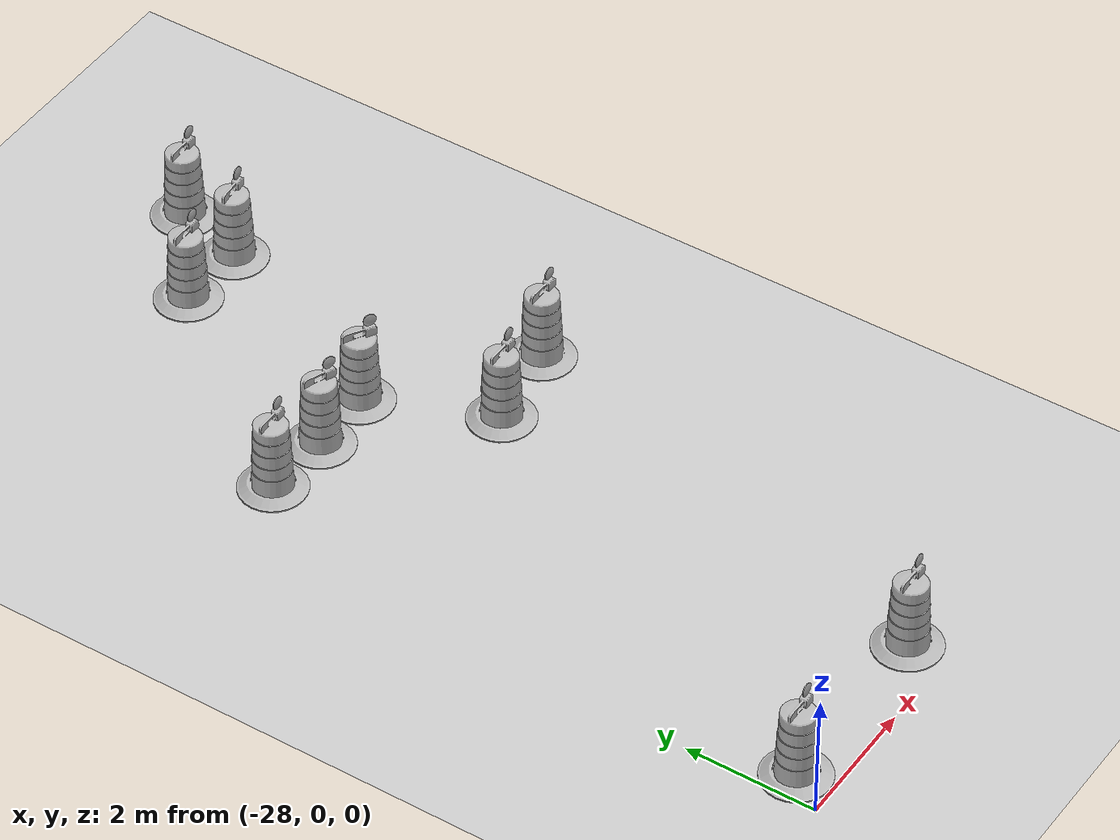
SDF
<sdf version="1.6">
 <world name="default">
  <model name="ground_plane">
   <static>1</static>
   <link name="link">
    <collision name="collision">
     <geometry><plane><normal>0 0 1</normal><size>100 100</size></plane></geometry>
     <surface>
      <contact><collide_bitmask>65535</collide_bitmask></contact>
      <friction><ode><mu>100</mu><mu2>50</mu2></ode></friction>
     </surface>
    </collision>
    <visual name="visual">
     <cast_shadows>0</cast_shadows>
     <geometry><plane><normal>0 0 1</normal><size>100 100</size></plane></geometry>
     <material>
      <script><uri>file://media/materials/scripts/gazebo.material</uri><name>Gazebo/Grey</name></script>
     </material>
    </visual>
   </link>
  </model>
  <model name="Construction Barrel_clone_0">
   <link name="link">
    <inertial>
     <pose>0 0 0.4 0 -0 0</pose>
     <mass>500</mass>
     <inertia><ixx>51.2096</ixx><iyy>51.2096</iyy><izz>25</izz><ixy>0</ixy><ixz>0</ixz><iyz>0</iyz></inertia>
    </inertial>
    <collision name="collision">
     <geometry><mesh><uri>model://construction_barrel/meshes/construction_barrel.dae</uri></mesh></geometry>
    </collision>
    <visual name="visual">
     <geometry><mesh><uri>model://construction_barrel/meshes/construction_barrel.dae</uri></mesh></geometry>
    </visual>
   </link>
   <pose>-26.9549 9.36861 0.024999 3e-06 1e-06 -0.008237</pose>
  </model>
  <model name="Construction Barrel_clone_2">
   <link name="link">
    <inertial>
     <pose>0 0 0.4 0 -0 0</pose>
     <mass>500</mass>
     <inertia><ixx>51.2096</ixx><iyy>51.2096</iyy><izz>25</izz><ixy>0</ixy><ixz>0</ixz><iyz>0</iyz></inertia>
    </inertial>
    <collision name="collision">
     <geometry><mesh><uri>model://construction_barrel/meshes/construction_barrel.dae</uri></mesh></geometry>
    </collision>
    <visual name="visual">
     <geometry><mesh><uri>model://construction_barrel/meshes/construction_barrel.dae</uri></mesh></geometry>
    </visual>
   </link>
   <pose>-24.8606 9.36046 0.024999 -1e-06 -2e-06 -0.538947</pose>
  </model>
  <model name="Construction Barrel_clone_3">
   <link name="link">
    <inertial>
     <pose>0 0 0.4 0 -0 0</pose>
     <mass>500</mass>
     <inertia><ixx>51.2096</ixx><iyy>51.2096</iyy><izz>25</izz><ixy>0</ixy><ixz>0</ixz><iyz>0</iyz></inertia>
    </inertial>
    <collision name="collision">
     <geometry><mesh><uri>model://construction_barrel/meshes/construction_barrel.dae</uri></mesh></geometry>
    </collision>
    <visual name="visual">
     <geometry><mesh><uri>model://construction_barrel/meshes/construction_barrel.dae</uri></mesh></geometry>
    </visual>
   </link>
   <pose>-25.892 9.3115 0.024999 -1e-06 -3e-06 -0.382459</pose>
  </model>
  <model name="Construction Barrel_clone_0_clone">
   <link name="link">
    <inertial>
     <pose>0 0 0.4 0 -0 0</pose>
     <mass>500</mass>
     <inertia><ixx>51.2096</ixx><iyy>51.2096</iyy><izz>25</izz><ixy>0</ixy><ixz>0</ixz><iyz>0</iyz></inertia>
    </inertial>
    <collision name="collision">
     <geometry><mesh><uri>model://construction_barrel/meshes/construction_barrel.dae</uri></mesh></geometry>
    </collision>
    <visual name="visual">
     <geometry><mesh><uri>model://construction_barrel/meshes/construction_barrel.dae</uri></mesh></geometry>
    </visual>
   </link>
   <pose>-23.0281 13.6938 0.025 2e-06 0 -0.00823</pose>
  </model>
  <model name="Construction Barrel_clone_0_clone_0">
   <link name="link">
    <inertial>
     <pose>0 0 0.4 0 -0 0</pose>
     <mass>500</mass>
     <inertia><ixx>51.2096</ixx><iyy>51.2096</iyy><izz>25</izz><ixy>0</ixy><ixz>0</ixz><iyz>0</iyz></inertia>
    </inertial>
    <collision name="collision">
     <geometry><mesh><uri>model://construction_barrel/meshes/construction_barrel.dae</uri></mesh></geometry>
    </collision>
    <visual name="visual">
     <geometry><mesh><uri>model://construction_barrel/meshes/construction_barrel.dae</uri></mesh></geometry>
    </visual>
   </link>
   <pose>-23.3725 12.576 0.024978 9e-06 -4e-06 0.091094</pose>
  </model>
  <model name="Construction Barrel_clone_0_clone_1">
   <link name="link">
    <inertial>
     <pose>0 0 0.4 0 -0 0</pose>
     <mass>500</mass>
     <inertia><ixx>51.2096</ixx><iyy>51.2096</iyy><izz>25</izz><ixy>0</ixy><ixz>0</ixz><iyz>0</iyz></inertia>
    </inertial>
    <collision name="collision">
     <geometry><mesh><uri>model://construction_barrel/meshes/construction_barrel.dae</uri></mesh></geometry>
    </collision>
    <visual name="visual">
     <geometry><mesh><uri>model://construction_barrel/meshes/construction_barrel.dae</uri></mesh></geometry>
    </visual>
   </link>
   <pose>-24.4609 12.601 0.024999 3e-06 0 -0.008244</pose>
  </model>
  <model name="Construction Barrel_clone_0_clone_4">
   <link name="link">
    <inertial>
     <pose>0 0 0.4 0 -0 0</pose>
     <mass>500</mass>
     <inertia><ixx>51.2096</ixx><iyy>51.2096</iyy><izz>25</izz><ixy>0</ixy><ixz>0</ixz><iyz>0</iyz></inertia>
    </inertial>
    <collision name="collision">
     <geometry><mesh><uri>model://construction_barrel/meshes/construction_barrel.dae</uri></mesh></geometry>
    </collision>
    <visual name="visual">
     <geometry><mesh><uri>model://construction_barrel/meshes/construction_barrel.dae</uri></mesh></geometry>
    </visual>
   </link>
   <pose>-22.7212 7.74348 0.023739 -0.000532 0.002044 -0.049433</pose>
  </model>
  <model name="Construction Barrel_clone_0_clone_5">
   <link name="link">
    <inertial>
     <pose>0 0 0.4 0 -0 0</pose>
     <mass>500</mass>
     <inertia><ixx>51.2096</ixx><iyy>51.2096</iyy><izz>25</izz><ixy>0</ixy><ixz>0</ixz><iyz>0</iyz></inertia>
    </inertial>
    <collision name="collision">
     <geometry><mesh><uri>model://construction_barrel/meshes/construction_barrel.dae</uri></mesh></geometry>
    </collision>
    <visual name="visual">
     <geometry><mesh><uri>model://construction_barrel/meshes/construction_barrel.dae</uri></mesh></geometry>
    </visual>
   </link>
   <pose>-24.0701 7.5202 0.024999 3e-06 -0 -0.008237</pose>
  </model>
  <model name="Construction Barrel_clone_0_clone_6">
   <link name="link">
    <inertial>
     <pose>0 0 0.4 0 -0 0</pose>
     <mass>500</mass>
     <inertia><ixx>51.2096</ixx><iyy>51.2096</iyy><izz>25</izz><ixy>0</ixy><ixz>0</ixz><iyz>0</iyz></inertia>
    </inertial>
    <collision name="collision">
     <geometry><mesh><uri>model://construction_barrel/meshes/construction_barrel.dae</uri></mesh></geometry>
    </collision>
    <visual name="visual">
     <geometry><mesh><uri>model://construction_barrel/meshes/construction_barrel.dae</uri></mesh></geometry>
    </visual>
   </link>
   <pose>-24.7765 0.539423 0.024999 -1e-06 -3e-06 -0.008235</pose>
  </model>
  <model name="Construction Barrel_clone_0_clone_7">
   <link name="link">
    <inertial>
     <pose>0 0 0.4 0 -0 0</pose>
     <mass>500</mass>
     <inertia><ixx>51.2096</ixx><iyy>51.2096</iyy><izz>25</izz><ixy>0</ixy><ixz>0</ixz><iyz>0</iyz></inertia>
    </inertial>
    <collision name="collision">
     <geometry><mesh><uri>model://construction_barrel/meshes/construction_barrel.dae</uri></mesh></geometry>
    </collision>
    <visual name="visual">
     <geometry><mesh><uri>model://construction_barrel/meshes/construction_barrel.dae</uri></mesh></geometry>
    </visual>
   </link>
   <pose>-27.6229 0.532136 0.024999 3e-06 0 -0.008236</pose>
  </model>
 </world>
</sdf>
